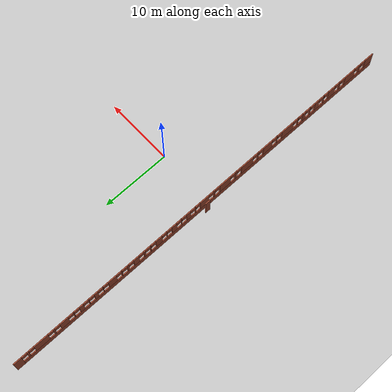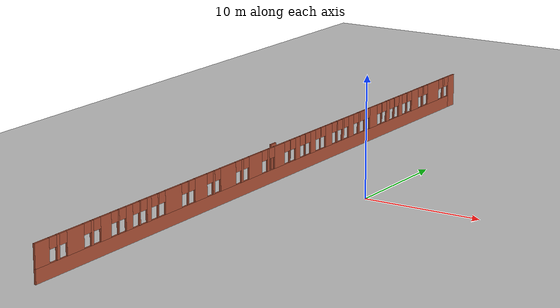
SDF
<sdf version="1.6">
 <world name="default">
  <model name="ground_plane">
   <static>1</static>
   <link name="link">
    <collision name="collision">
     <geometry><plane><normal>0 0 1</normal><size>100 100</size></plane></geometry>
     <surface><friction><ode><mu>100</mu><mu2>50</mu2></ode></friction></surface>
    </collision>
    <visual name="visual">
     <cast_shadows>0</cast_shadows>
     <geometry><plane><normal>0 0 1</normal><size>100 100</size></plane></geometry>
     <material>
      <script><uri>file://media/materials/scripts/gazebo.material</uri><name>Gazebo/Grey</name></script>
     </material>
    </visual>
   </link>
  </model>
  <model name="UNFRGS_INF_-_Predio_73">
   <pose>-0.02513 1.0401 -0.009 0 -0 0</pose>
   <link name="Wall_693">
    <collision name="Wall_693_Collision">
     <geometry><box><size>0.75 0.15 2.96</size></box></geometry>
     <pose>0 0 1.48 0 -0 0</pose>
    </collision>
    <visual name="Wall_693_Visual">
     <pose>0 0 1.48 0 -0 0</pose>
     <geometry><box><size>0.75 0.15 2.96</size></box></geometry>
     <material>
      <script><uri>file://media/materials/scripts/gazebo.material</uri><name>Gazebo/Bricks</name></script>
      <ambient>0.498039 0.498039 0.498039 1</ambient>
     </material>
     <meta><layer>0</layer></meta>
    </visual>
    <pose>-9.34913 -0.025219 0 0 0 -1.5708</pose>
   </link>
   <link name="Wall_7">
    <pose>-8.77313 -0.095219 0 0 0 -1.5708</pose>
    <visual name="Wall_7_Visual_0">
     <pose>-30.0271 0 1.48 0 -0 0</pose>
     <geometry><box><size>1.19571 0.15 2.96</size></box></geometry>
     <material>
      <script><uri>file://media/materials/scripts/gazebo.material</uri><name>Gazebo/Bricks</name></script>
      <ambient>0.929412 1 0.760784 1</ambient>
     </material>
     <meta><layer>0</layer></meta>
    </visual>
    <collision name="Wall_7_Collision_0">
     <geometry><box><size>1.19571 0.15 2.96</size></box></geometry>
     <pose>-30.0271 0 1.48 0 -0 0</pose>
    </collision>
    <visual name="Wall_7_Visual_1">
     <pose>0.597857 0 0.55 0 -0 0</pose>
     <geometry><box><size>60.0543 0.15 1.11</size></box></geometry>
     <material>
      <script><uri>file://media/materials/scripts/gazebo.material</uri><name>Gazebo/Bricks</name></script>
      <ambient>0.929412 1 0.760784 1</ambient>
     </material>
     <meta><layer>0</layer></meta>
    </visual>
    <collision name="Wall_7_Collision_1">
     <geometry><box><size>60.0543 0.15 1.11</size></box></geometry>
     <pose>0.597857 0 0.55 0 -0 0</pose>
    </collision>
    <visual name="Wall_7_Visual_2">
     <pose>-28.4868 0 2.03 0 -0 0</pose>
     <geometry><box><size>0.285054 0.15 1.86</size></box></geometry>
     <material>
      <script><uri>file://media/materials/scripts/gazebo.material</uri><name>Gazebo/Bricks</name></script>
      <ambient>0.929412 1 0.760784 1</ambient>
     </material>
     <meta><layer>0</layer></meta>
    </visual>
    <collision name="Wall_7_Collision_2">
     <geometry><box><size>0.285054 0.15 1.86</size></box></geometry>
     <pose>-28.4868 0 2.03 0 -0 0</pose>
    </collision>
    <visual name="Wall_7_Visual_3">
     <pose>-26.47 0 2.03 0 -0 0</pose>
     <geometry><box><size>2.14855 0.15 1.86</size></box></geometry>
     <material>
      <script><uri>file://media/materials/scripts/gazebo.material</uri><name>Gazebo/Bricks</name></script>
      <ambient>0.929412 1 0.760784 1</ambient>
     </material>
     <meta><layer>0</layer></meta>
    </visual>
    <collision name="Wall_7_Collision_3">
     <geometry><box><size>2.14855 0.15 1.86</size></box></geometry>
     <pose>-26.47 0 2.03 0 -0 0</pose>
    </collision>
    <visual name="Wall_7_Visual_4">
     <pose>-24.4929 0 2.03 0 -0 0</pose>
     <geometry><box><size>0.20548 0.15 1.86</size></box></geometry>
     <material>
      <script><uri>file://media/materials/scripts/gazebo.material</uri><name>Gazebo/Bricks</name></script>
      <ambient>0.929412 1 0.760784 1</ambient>
     </material>
     <meta><layer>0</layer></meta>
    </visual>
    <collision name="Wall_7_Collision_4">
     <geometry><box><size>0.20548 0.15 1.86</size></box></geometry>
     <pose>-24.4929 0 2.03 0 -0 0</pose>
    </collision>
    <visual name="Wall_7_Visual_5">
     <pose>-22.9523 0 2.03 0 -0 0</pose>
     <geometry><box><size>1.27583 0.15 1.86</size></box></geometry>
     <material>
      <script><uri>file://media/materials/scripts/gazebo.material</uri><name>Gazebo/Bricks</name></script>
      <ambient>0.929412 1 0.760784 1</ambient>
     </material>
     <meta><layer>0</layer></meta>
    </visual>
    <collision name="Wall_7_Collision_5">
     <geometry><box><size>1.27583 0.15 1.86</size></box></geometry>
     <pose>-22.9523 0 2.03 0 -0 0</pose>
    </collision>
    <visual name="Wall_7_Visual_6">
     <pose>-21.4441 0 2.03 0 -0 0</pose>
     <geometry><box><size>0.140611 0.15 1.86</size></box></geometry>
     <material>
      <script><uri>file://media/materials/scripts/gazebo.material</uri><name>Gazebo/Bricks</name></script>
      <ambient>0.929412 1 0.760784 1</ambient>
     </material>
     <meta><layer>0</layer></meta>
    </visual>
    <collision name="Wall_7_Collision_6">
     <geometry><box><size>0.140611 0.15 1.86</size></box></geometry>
     <pose>-21.4441 0 2.03 0 -0 0</pose>
    </collision>
    <visual name="Wall_7_Visual_7">
     <pose>-20.2602 0 2.03 0 -0 0</pose>
     <geometry><box><size>0.627134 0.15 1.86</size></box></geometry>
     <material>
      <script><uri>file://media/materials/scripts/gazebo.material</uri><name>Gazebo/Bricks</name></script>
      <ambient>0.929412 1 0.760784 1</ambient>
     </material>
     <meta><layer>0</layer></meta>
    </visual>
    <collision name="Wall_7_Collision_7">
     <geometry><box><size>0.627134 0.15 1.86</size></box></geometry>
     <pose>-20.2602 0 2.03 0 -0 0</pose>
    </collision>
    <visual name="Wall_7_Visual_8">
     <pose>-19.0925 0 2.03 0 -0 0</pose>
     <geometry><box><size>0.108176 0.15 1.86</size></box></geometry>
     <material>
      <script><uri>file://media/materials/scripts/gazebo.material</uri><name>Gazebo/Bricks</name></script>
      <ambient>0.929412 1 0.760784 1</ambient>
     </material>
     <meta><layer>0</layer></meta>
    </visual>
    <collision name="Wall_7_Collision_8">
     <geometry><box><size>0.108176 0.15 1.86</size></box></geometry>
     <pose>-19.0925 0 2.03 0 -0 0</pose>
    </collision>
    <visual name="Wall_7_Visual_9">
     <pose>-17.9565 0 2.03 0 -0 0</pose>
     <geometry><box><size>0.563907 0.15 1.86</size></box></geometry>
     <material>
      <script><uri>file://media/materials/scripts/gazebo.material</uri><name>Gazebo/Bricks</name></script>
      <ambient>0.929412 1 0.760784 1</ambient>
     </material>
     <meta><layer>0</layer></meta>
    </visual>
    <collision name="Wall_7_Collision_9">
     <geometry><box><size>0.563907 0.15 1.86</size></box></geometry>
     <pose>-17.9565 0 2.03 0 -0 0</pose>
    </collision>
    <visual name="Wall_7_Visual_10">
     <pose>-16.8375 0 2.03 0 -0 0</pose>
     <geometry><box><size>0.074071 0.15 1.86</size></box></geometry>
     <material>
      <script><uri>file://media/materials/scripts/gazebo.material</uri><name>Gazebo/Bricks</name></script>
      <ambient>0.929412 1 0.760784 1</ambient>
     </material>
     <meta><layer>0</layer></meta>
    </visual>
    <collision name="Wall_7_Collision_10">
     <geometry><box><size>0.074071 0.15 1.86</size></box></geometry>
     <pose>-16.8375 0 2.03 0 -0 0</pose>
    </collision>
    <visual name="Wall_7_Visual_11">
     <pose>-15.3606 0 2.03 0 -0 0</pose>
     <geometry><box><size>1.27969 0.15 1.86</size></box></geometry>
     <material>
      <script><uri>file://media/materials/scripts/gazebo.material</uri><name>Gazebo/Bricks</name></script>
      <ambient>0.929412 1 0.760784 1</ambient>
     </material>
     <meta><layer>0</layer></meta>
    </visual>
    <collision name="Wall_7_Collision_11">
     <geometry><box><size>1.27969 0.15 1.86</size></box></geometry>
     <pose>-15.3606 0 2.03 0 -0 0</pose>
    </collision>
    <visual name="Wall_7_Visual_12">
     <pose>-13.8536 0 2.03 0 -0 0</pose>
     <geometry><box><size>0.134351 0.15 1.86</size></box></geometry>
     <material>
      <script><uri>file://media/materials/scripts/gazebo.material</uri><name>Gazebo/Bricks</name></script>
      <ambient>0.929412 1 0.760784 1</ambient>
     </material>
     <meta><layer>0</layer></meta>
    </visual>
    <collision name="Wall_7_Collision_12">
     <geometry><box><size>0.134351 0.15 1.86</size></box></geometry>
     <pose>-13.8536 0 2.03 0 -0 0</pose>
    </collision>
    <visual name="Wall_7_Visual_13">
     <pose>-12.859 0 2.03 0 -0 0</pose>
     <geometry><box><size>0.254914 0.15 1.86</size></box></geometry>
     <material>
      <script><uri>file://media/materials/scripts/gazebo.material</uri><name>Gazebo/Bricks</name></script>
      <ambient>0.929412 1 0.760784 1</ambient>
     </material>
     <meta><layer>0</layer></meta>
    </visual>
    <collision name="Wall_7_Collision_13">
     <geometry><box><size>0.254914 0.15 1.86</size></box></geometry>
     <pose>-12.859 0 2.03 0 -0 0</pose>
    </collision>
    <visual name="Wall_7_Visual_14">
     <pose>-11.5027 0 2.03 0 -0 0</pose>
     <geometry><box><size>0.857721 0.15 1.86</size></box></geometry>
     <material>
      <script><uri>file://media/materials/scripts/gazebo.material</uri><name>Gazebo/Bricks</name></script>
      <ambient>0.929412 1 0.760784 1</ambient>
     </material>
     <meta><layer>0</layer></meta>
    </visual>
    <collision name="Wall_7_Collision_14">
     <geometry><box><size>0.857721 0.15 1.86</size></box></geometry>
     <pose>-11.5027 0 2.03 0 -0 0</pose>
    </collision>
    <visual name="Wall_7_Visual_15">
     <pose>-10.1463 0 2.03 0 -0 0</pose>
     <geometry><box><size>0.254914 0.15 1.86</size></box></geometry>
     <material>
      <script><uri>file://media/materials/scripts/gazebo.material</uri><name>Gazebo/Bricks</name></script>
      <ambient>0.929412 1 0.760784 1</ambient>
     </material>
     <meta><layer>0</layer></meta>
    </visual>
    <collision name="Wall_7_Collision_15">
     <geometry><box><size>0.254914 0.15 1.86</size></box></geometry>
     <pose>-10.1463 0 2.03 0 -0 0</pose>
    </collision>
    <visual name="Wall_7_Visual_16">
     <pose>-9.15171 0 2.03 0 -0 0</pose>
     <geometry><box><size>0.134351 0.15 1.86</size></box></geometry>
     <material>
      <script><uri>file://media/materials/scripts/gazebo.material</uri><name>Gazebo/Bricks</name></script>
      <ambient>0.929412 1 0.760784 1</ambient>
     </material>
     <meta><layer>0</layer></meta>
    </visual>
    <collision name="Wall_7_Collision_16">
     <geometry><box><size>0.134351 0.15 1.86</size></box></geometry>
     <pose>-9.15171 0 2.03 0 -0 0</pose>
    </collision>
    <visual name="Wall_7_Visual_17">
     <pose>-7.78032 0 2.03 0 -0 0</pose>
     <geometry><box><size>1.00842 0.15 1.86</size></box></geometry>
     <material>
      <script><uri>file://media/materials/scripts/gazebo.material</uri><name>Gazebo/Bricks</name></script>
      <ambient>0.929412 1 0.760784 1</ambient>
     </material>
     <meta><layer>0</layer></meta>
    </visual>
    <collision name="Wall_7_Collision_17">
     <geometry><box><size>1.00842 0.15 1.86</size></box></geometry>
     <pose>-7.78032 0 2.03 0 -0 0</pose>
    </collision>
    <visual name="Wall_7_Visual_18">
     <pose>-6.45414 0 2.03 0 -0 0</pose>
     <geometry><box><size>0.043931 0.15 1.86</size></box></geometry>
     <material>
      <script><uri>file://media/materials/scripts/gazebo.material</uri><name>Gazebo/Bricks</name></script>
      <ambient>0.929412 1 0.760784 1</ambient>
     </material>
     <meta><layer>0</layer></meta>
    </visual>
    <collision name="Wall_7_Collision_18">
     <geometry><box><size>0.043931 0.15 1.86</size></box></geometry>
     <pose>-6.45414 0 2.03 0 -0 0</pose>
    </collision>
    <visual name="Wall_7_Visual_19">
     <pose>-5.23346 0 2.03 0 -0 0</pose>
     <geometry><box><size>0.79744 0.15 1.86</size></box></geometry>
     <material>
      <script><uri>file://media/materials/scripts/gazebo.material</uri><name>Gazebo/Bricks</name></script>
      <ambient>0.929412 1 0.760784 1</ambient>
     </material>
     <meta><layer>0</layer></meta>
    </visual>
    <collision name="Wall_7_Collision_19">
     <geometry><box><size>0.79744 0.15 1.86</size></box></geometry>
     <pose>-5.23346 0 2.03 0 -0 0</pose>
    </collision>
    <visual name="Wall_7_Visual_20">
     <pose>-3.9977 0 2.03 0 -0 0</pose>
     <geometry><box><size>0.074071 0.15 1.86</size></box></geometry>
     <material>
      <script><uri>file://media/materials/scripts/gazebo.material</uri><name>Gazebo/Bricks</name></script>
      <ambient>0.929412 1 0.760784 1</ambient>
     </material>
     <meta><layer>0</layer></meta>
    </visual>
    <collision name="Wall_7_Collision_20">
     <geometry><box><size>0.074071 0.15 1.86</size></box></geometry>
     <pose>-3.9977 0 2.03 0 -0 0</pose>
    </collision>
    <visual name="Wall_7_Visual_21">
     <pose>-2.82223 0 2.03 0 -0 0</pose>
     <geometry><box><size>0.676878 0.15 1.86</size></box></geometry>
     <material>
      <script><uri>file://media/materials/scripts/gazebo.material</uri><name>Gazebo/Bricks</name></script>
      <ambient>0.929412 1 0.760784 1</ambient>
     </material>
     <meta><layer>0</layer></meta>
    </visual>
    <collision name="Wall_7_Collision_21">
     <geometry><box><size>0.676878 0.15 1.86</size></box></geometry>
     <pose>-2.82223 0 2.03 0 -0 0</pose>
    </collision>
    <visual name="Wall_7_Visual_22">
     <pose>-1.64675 0 2.03 0 -0 0</pose>
     <geometry><box><size>0.074071 0.15 1.86</size></box></geometry>
     <material>
      <script><uri>file://media/materials/scripts/gazebo.material</uri><name>Gazebo/Bricks</name></script>
      <ambient>0.929412 1 0.760784 1</ambient>
     </material>
     <meta><layer>0</layer></meta>
    </visual>
    <collision name="Wall_7_Collision_22">
     <geometry><box><size>0.074071 0.15 1.86</size></box></geometry>
     <pose>-1.64675 0 2.03 0 -0 0</pose>
    </collision>
    <visual name="Wall_7_Visual_23">
     <pose>-0.064384 0 2.03 0 -0 0</pose>
     <geometry><box><size>1.49067 0.15 1.86</size></box></geometry>
     <material>
      <script><uri>file://media/materials/scripts/gazebo.material</uri><name>Gazebo/Bricks</name></script>
      <ambient>0.929412 1 0.760784 1</ambient>
     </material>
     <meta><layer>0</layer></meta>
    </visual>
    <collision name="Wall_7_Collision_23">
     <geometry><box><size>1.49067 0.15 1.86</size></box></geometry>
     <pose>-0.064384 0 2.03 0 -0 0</pose>
    </collision>
    <visual name="Wall_7_Visual_24">
     <pose>1.60841 0 2.03 0 -0 0</pose>
     <geometry><box><size>0.254913 0.15 1.86</size></box></geometry>
     <material>
      <script><uri>file://media/materials/scripts/gazebo.material</uri><name>Gazebo/Bricks</name></script>
      <ambient>0.929412 1 0.760784 1</ambient>
     </material>
     <meta><layer>0</layer></meta>
    </visual>
    <collision name="Wall_7_Collision_24">
     <geometry><box><size>0.254913 0.15 1.86</size></box></geometry>
     <pose>1.60841 0 2.03 0 -0 0</pose>
    </collision>
    <visual name="Wall_7_Visual_25">
     <pose>3.47711 0 2.03 0 -0 0</pose>
     <geometry><box><size>1.88249 0.15 1.86</size></box></geometry>
     <material>
      <script><uri>file://media/materials/scripts/gazebo.material</uri><name>Gazebo/Bricks</name></script>
      <ambient>0.929412 1 0.760784 1</ambient>
     </material>
     <meta><layer>0</layer></meta>
    </visual>
    <collision name="Wall_7_Collision_25">
     <geometry><box><size>1.88249 0.15 1.86</size></box></geometry>
     <pose>3.47711 0 2.03 0 -0 0</pose>
    </collision>
    <visual name="Wall_7_Visual_26">
     <pose>5.36088 0 2.03 0 -0 0</pose>
     <geometry><box><size>0.285053 0.15 1.86</size></box></geometry>
     <material>
      <script><uri>file://media/materials/scripts/gazebo.material</uri><name>Gazebo/Bricks</name></script>
      <ambient>0.929412 1 0.760784 1</ambient>
     </material>
     <meta><layer>0</layer></meta>
    </visual>
    <collision name="Wall_7_Collision_26">
     <geometry><box><size>0.285053 0.15 1.86</size></box></geometry>
     <pose>5.36088 0 2.03 0 -0 0</pose>
    </collision>
    <visual name="Wall_7_Visual_27">
     <pose>7.35015 0 2.03 0 -0 0</pose>
     <geometry><box><size>2.09348 0.15 1.86</size></box></geometry>
     <material>
      <script><uri>file://media/materials/scripts/gazebo.material</uri><name>Gazebo/Bricks</name></script>
      <ambient>0.929412 1 0.760784 1</ambient>
     </material>
     <meta><layer>0</layer></meta>
    </visual>
    <collision name="Wall_7_Collision_27">
     <geometry><box><size>2.09348 0.15 1.86</size></box></geometry>
     <pose>7.35015 0 2.03 0 -0 0</pose>
    </collision>
    <visual name="Wall_7_Visual_28">
     <pose>9.30927 0 2.03 0 -0 0</pose>
     <geometry><box><size>0.224774 0.15 1.86</size></box></geometry>
     <material>
      <script><uri>file://media/materials/scripts/gazebo.material</uri><name>Gazebo/Bricks</name></script>
      <ambient>0.929412 1 0.760784 1</ambient>
     </material>
     <meta><layer>0</layer></meta>
    </visual>
    <collision name="Wall_7_Collision_28">
     <geometry><box><size>0.224774 0.15 1.86</size></box></geometry>
     <pose>9.30927 0 2.03 0 -0 0</pose>
    </collision>
    <visual name="Wall_7_Visual_29">
     <pose>11.0273 0 2.03 0 -0 0</pose>
     <geometry><box><size>1.61123 0.15 1.86</size></box></geometry>
     <material>
      <script><uri>file://media/materials/scripts/gazebo.material</uri><name>Gazebo/Bricks</name></script>
      <ambient>0.929412 1 0.760784 1</ambient>
     </material>
     <meta><layer>0</layer></meta>
    </visual>
    <collision name="Wall_7_Collision_29">
     <geometry><box><size>1.61123 0.15 1.86</size></box></geometry>
     <pose>11.0273 0 2.03 0 -0 0</pose>
    </collision>
    <visual name="Wall_7_Visual_30">
     <pose>12.7001 0 2.03 0 -0 0</pose>
     <geometry><box><size>0.134351 0.15 1.86</size></box></geometry>
     <material>
      <script><uri>file://media/materials/scripts/gazebo.material</uri><name>Gazebo/Bricks</name></script>
      <ambient>0.929412 1 0.760784 1</ambient>
     </material>
     <meta><layer>0</layer></meta>
    </visual>
    <collision name="Wall_7_Collision_30">
     <geometry><box><size>0.134351 0.15 1.86</size></box></geometry>
     <pose>12.7001 0 2.03 0 -0 0</pose>
    </collision>
    <visual name="Wall_7_Visual_31">
     <pose>14.614 0 2.03 0 -0 0</pose>
     <geometry><box><size>2.09348 0.15 1.86</size></box></geometry>
     <material>
      <script><uri>file://media/materials/scripts/gazebo.material</uri><name>Gazebo/Bricks</name></script>
      <ambient>0.929412 1 0.760784 1</ambient>
     </material>
     <meta><layer>0</layer></meta>
    </visual>
    <collision name="Wall_7_Collision_31">
     <geometry><box><size>2.09348 0.15 1.86</size></box></geometry>
     <pose>14.614 0 2.03 0 -0 0</pose>
    </collision>
    <visual name="Wall_7_Visual_32">
     <pose>16.5279 0 2.03 0 -0 0</pose>
     <geometry><box><size>0.134353 0.15 1.86</size></box></geometry>
     <material>
      <script><uri>file://media/materials/scripts/gazebo.material</uri><name>Gazebo/Bricks</name></script>
      <ambient>0.929412 1 0.760784 1</ambient>
     </material>
     <meta><layer>0</layer></meta>
    </visual>
    <collision name="Wall_7_Collision_32">
     <geometry><box><size>0.134353 0.15 1.86</size></box></geometry>
     <pose>16.5279 0 2.03 0 -0 0</pose>
    </collision>
    <visual name="Wall_7_Visual_33">
     <pose>17.6582 0 2.03 0 -0 0</pose>
     <geometry><box><size>0.526176 0.15 1.86</size></box></geometry>
     <material>
      <script><uri>file://media/materials/scripts/gazebo.material</uri><name>Gazebo/Bricks</name></script>
      <ambient>0.929412 1 0.760784 1</ambient>
     </material>
     <meta><layer>0</layer></meta>
    </visual>
    <collision name="Wall_7_Collision_33">
     <geometry><box><size>0.526176 0.15 1.86</size></box></geometry>
     <pose>17.6582 0 2.03 0 -0 0</pose>
    </collision>
    <visual name="Wall_7_Visual_34">
     <pose>18.7884 0 2.03 0 -0 0</pose>
     <geometry><box><size>0.134353 0.15 1.86</size></box></geometry>
     <material>
      <script><uri>file://media/materials/scripts/gazebo.material</uri><name>Gazebo/Bricks</name></script>
      <ambient>0.929412 1 0.760784 1</ambient>
     </material>
     <meta><layer>0</layer></meta>
    </visual>
    <collision name="Wall_7_Collision_34">
     <geometry><box><size>0.134353 0.15 1.86</size></box></geometry>
     <pose>18.7884 0 2.03 0 -0 0</pose>
    </collision>
    <visual name="Wall_7_Visual_35">
     <pose>20.0543 0 2.03 0 -0 0</pose>
     <geometry><box><size>0.797439 0.15 1.86</size></box></geometry>
     <material>
      <script><uri>file://media/materials/scripts/gazebo.material</uri><name>Gazebo/Bricks</name></script>
      <ambient>0.929412 1 0.760784 1</ambient>
     </material>
     <meta><layer>0</layer></meta>
    </visual>
    <collision name="Wall_7_Collision_35">
     <geometry><box><size>0.797439 0.15 1.86</size></box></geometry>
     <pose>20.0543 0 2.03 0 -0 0</pose>
    </collision>
    <visual name="Wall_7_Visual_36">
     <pose>21.3202 0 2.03 0 -0 0</pose>
     <geometry><box><size>0.134353 0.15 1.86</size></box></geometry>
     <material>
      <script><uri>file://media/materials/scripts/gazebo.material</uri><name>Gazebo/Bricks</name></script>
      <ambient>0.929412 1 0.760784 1</ambient>
     </material>
     <meta><layer>0</layer></meta>
    </visual>
    <collision name="Wall_7_Collision_36">
     <geometry><box><size>0.134353 0.15 1.86</size></box></geometry>
     <pose>21.3202 0 2.03 0 -0 0</pose>
    </collision>
    <visual name="Wall_7_Visual_37">
     <pose>22.7971 0 2.03 0 -0 0</pose>
     <geometry><box><size>1.2194 0.15 1.86</size></box></geometry>
     <material>
      <script><uri>file://media/materials/scripts/gazebo.material</uri><name>Gazebo/Bricks</name></script>
      <ambient>0.929412 1 0.760784 1</ambient>
     </material>
     <meta><layer>0</layer></meta>
    </visual>
    <collision name="Wall_7_Collision_37">
     <geometry><box><size>1.2194 0.15 1.86</size></box></geometry>
     <pose>22.7971 0 2.03 0 -0 0</pose>
    </collision>
    <visual name="Wall_7_Visual_38">
     <pose>24.3493 0 2.03 0 -0 0</pose>
     <geometry><box><size>0.285054 0.15 1.86</size></box></geometry>
     <material>
      <script><uri>file://media/materials/scripts/gazebo.material</uri><name>Gazebo/Bricks</name></script>
      <ambient>0.929412 1 0.760784 1</ambient>
     </material>
     <meta><layer>0</layer></meta>
    </visual>
    <collision name="Wall_7_Collision_38">
     <geometry><box><size>0.285054 0.15 1.86</size></box></geometry>
     <pose>24.3493 0 2.03 0 -0 0</pose>
    </collision>
    <visual name="Wall_7_Visual_39">
     <pose>26.2331 0 2.03 0 -0 0</pose>
     <geometry><box><size>1.88249 0.15 1.86</size></box></geometry>
     <material>
      <script><uri>file://media/materials/scripts/gazebo.material</uri><name>Gazebo/Bricks</name></script>
      <ambient>0.929412 1 0.760784 1</ambient>
     </material>
     <meta><layer>0</layer></meta>
    </visual>
    <collision name="Wall_7_Collision_39">
     <geometry><box><size>1.88249 0.15 1.86</size></box></geometry>
     <pose>26.2331 0 2.03 0 -0 0</pose>
    </collision>
    <visual name="Wall_7_Visual_40">
     <pose>28.1319 0 2.03 0 -0 0</pose>
     <geometry><box><size>0.315194 0.15 1.86</size></box></geometry>
     <material>
      <script><uri>file://media/materials/scripts/gazebo.material</uri><name>Gazebo/Bricks</name></script>
      <ambient>0.929412 1 0.760784 1</ambient>
     </material>
     <meta><layer>0</layer></meta>
    </visual>
    <collision name="Wall_7_Collision_40">
     <geometry><box><size>0.315194 0.15 1.86</size></box></geometry>
     <pose>28.1319 0 2.03 0 -0 0</pose>
    </collision>
    <visual name="Wall_7_Visual_41">
     <pose>29.8573 0 2.03 0 -0 0</pose>
     <geometry><box><size>1.53547 0.15 1.86</size></box></geometry>
     <material>
      <script><uri>file://media/materials/scripts/gazebo.material</uri><name>Gazebo/Bricks</name></script>
      <ambient>0.929412 1 0.760784 1</ambient>
     </material>
     <meta><layer>0</layer></meta>
    </visual>
    <collision name="Wall_7_Collision_41">
     <geometry><box><size>1.53547 0.15 1.86</size></box></geometry>
     <pose>29.8573 0 2.03 0 -0 0</pose>
    </collision>
    <visual name="Wall_7_Visual_42">
     <pose>-29.0293 0 2.53 0 -0 0</pose>
     <geometry><box><size>0.8 0.15 0.86</size></box></geometry>
     <material>
      <script><uri>file://media/materials/scripts/gazebo.material</uri><name>Gazebo/Bricks</name></script>
      <ambient>0.929412 1 0.760784 1</ambient>
     </material>
     <meta><layer>0</layer></meta>
    </visual>
    <collision name="Wall_7_Collision_42">
     <geometry><box><size>0.8 0.15 0.86</size></box></geometry>
     <pose>-29.0293 0 2.53 0 -0 0</pose>
    </collision>
    <visual name="Wall_7_Visual_43">
     <pose>-27.9442 0 2.53 0 -0 0</pose>
     <geometry><box><size>0.8 0.15 0.86</size></box></geometry>
     <material>
      <script><uri>file://media/materials/scripts/gazebo.material</uri><name>Gazebo/Bricks</name></script>
      <ambient>0.929412 1 0.760784 1</ambient>
     </material>
     <meta><layer>0</layer></meta>
    </visual>
    <collision name="Wall_7_Collision_43">
     <geometry><box><size>0.8 0.15 0.86</size></box></geometry>
     <pose>-27.9442 0 2.53 0 -0 0</pose>
    </collision>
    <visual name="Wall_7_Visual_44">
     <pose>-24.9957 0 2.53 0 -0 0</pose>
     <geometry><box><size>0.8 0.15 0.86</size></box></geometry>
     <material>
      <script><uri>file://media/materials/scripts/gazebo.material</uri><name>Gazebo/Bricks</name></script>
      <ambient>0.929412 1 0.760784 1</ambient>
     </material>
     <meta><layer>0</layer></meta>
    </visual>
    <collision name="Wall_7_Collision_44">
     <geometry><box><size>0.8 0.15 0.86</size></box></geometry>
     <pose>-24.9957 0 2.53 0 -0 0</pose>
    </collision>
    <visual name="Wall_7_Visual_45">
     <pose>-23.9902 0 2.53 0 -0 0</pose>
     <geometry><box><size>0.8 0.15 0.86</size></box></geometry>
     <material>
      <script><uri>file://media/materials/scripts/gazebo.material</uri><name>Gazebo/Bricks</name></script>
      <ambient>0.929412 1 0.760784 1</ambient>
     </material>
     <meta><layer>0</layer></meta>
    </visual>
    <collision name="Wall_7_Collision_45">
     <geometry><box><size>0.8 0.15 0.86</size></box></geometry>
     <pose>-23.9902 0 2.53 0 -0 0</pose>
    </collision>
    <visual name="Wall_7_Visual_46">
     <pose>-21.9144 0 2.53 0 -0 0</pose>
     <geometry><box><size>0.8 0.15 0.86</size></box></geometry>
     <material>
      <script><uri>file://media/materials/scripts/gazebo.material</uri><name>Gazebo/Bricks</name></script>
      <ambient>0.929412 1 0.760784 1</ambient>
     </material>
     <meta><layer>0</layer></meta>
    </visual>
    <collision name="Wall_7_Collision_46">
     <geometry><box><size>0.8 0.15 0.86</size></box></geometry>
     <pose>-21.9144 0 2.53 0 -0 0</pose>
    </collision>
    <visual name="Wall_7_Visual_47">
     <pose>-20.9738 0 2.53 0 -0 0</pose>
     <geometry><box><size>0.8 0.15 0.86</size></box></geometry>
     <material>
      <script><uri>file://media/materials/scripts/gazebo.material</uri><name>Gazebo/Bricks</name></script>
      <ambient>0.929412 1 0.760784 1</ambient>
     </material>
     <meta><layer>0</layer></meta>
    </visual>
    <collision name="Wall_7_Collision_47">
     <geometry><box><size>0.8 0.15 0.86</size></box></geometry>
     <pose>-20.9738 0 2.53 0 -0 0</pose>
    </collision>
    <visual name="Wall_7_Visual_48">
     <pose>-19.5466 0 2.53 0 -0 0</pose>
     <geometry><box><size>0.8 0.15 0.86</size></box></geometry>
     <material>
      <script><uri>file://media/materials/scripts/gazebo.material</uri><name>Gazebo/Bricks</name></script>
      <ambient>0.929412 1 0.760784 1</ambient>
     </material>
     <meta><layer>0</layer></meta>
    </visual>
    <collision name="Wall_7_Collision_48">
     <geometry><box><size>0.8 0.15 0.86</size></box></geometry>
     <pose>-19.5466 0 2.53 0 -0 0</pose>
    </collision>
    <visual name="Wall_7_Visual_49">
     <pose>-18.6384 0 2.53 0 -0 0</pose>
     <geometry><box><size>0.8 0.15 0.86</size></box></geometry>
     <material>
      <script><uri>file://media/materials/scripts/gazebo.material</uri><name>Gazebo/Bricks</name></script>
      <ambient>0.929412 1 0.760784 1</ambient>
     </material>
     <meta><layer>0</layer></meta>
    </visual>
    <collision name="Wall_7_Collision_49">
     <geometry><box><size>0.8 0.15 0.86</size></box></geometry>
     <pose>-18.6384 0 2.53 0 -0 0</pose>
    </collision>
    <visual name="Wall_7_Visual_50">
     <pose>-17.2745 0 2.53 0 -0 0</pose>
     <geometry><box><size>0.8 0.15 0.86</size></box></geometry>
     <material>
      <script><uri>file://media/materials/scripts/gazebo.material</uri><name>Gazebo/Bricks</name></script>
      <ambient>0.929412 1 0.760784 1</ambient>
     </material>
     <meta><layer>0</layer></meta>
    </visual>
    <collision name="Wall_7_Collision_50">
     <geometry><box><size>0.8 0.15 0.86</size></box></geometry>
     <pose>-17.2745 0 2.53 0 -0 0</pose>
    </collision>
    <visual name="Wall_7_Visual_51">
     <pose>-16.4005 0 2.53 0 -0 0</pose>
     <geometry><box><size>0.8 0.15 0.86</size></box></geometry>
     <material>
      <script><uri>file://media/materials/scripts/gazebo.material</uri><name>Gazebo/Bricks</name></script>
      <ambient>0.929412 1 0.760784 1</ambient>
     </material>
     <meta><layer>0</layer></meta>
    </visual>
    <collision name="Wall_7_Collision_51">
     <geometry><box><size>0.8 0.15 0.86</size></box></geometry>
     <pose>-16.4005 0 2.53 0 -0 0</pose>
    </collision>
    <visual name="Wall_7_Visual_52">
     <pose>-14.3208 0 2.53 0 -0 0</pose>
     <geometry><box><size>0.8 0.15 0.86</size></box></geometry>
     <material>
      <script><uri>file://media/materials/scripts/gazebo.material</uri><name>Gazebo/Bricks</name></script>
      <ambient>0.929412 1 0.760784 1</ambient>
     </material>
     <meta><layer>0</layer></meta>
    </visual>
    <collision name="Wall_7_Collision_52">
     <geometry><box><size>0.8 0.15 0.86</size></box></geometry>
     <pose>-14.3208 0 2.53 0 -0 0</pose>
    </collision>
    <visual name="Wall_7_Visual_53">
     <pose>-13.3864 0 2.53 0 -0 0</pose>
     <geometry><box><size>0.8 0.15 0.86</size></box></geometry>
     <material>
      <script><uri>file://media/materials/scripts/gazebo.material</uri><name>Gazebo/Bricks</name></script>
      <ambient>0.929412 1 0.760784 1</ambient>
     </material>
     <meta><layer>0</layer></meta>
    </visual>
    <collision name="Wall_7_Collision_53">
     <geometry><box><size>0.8 0.15 0.86</size></box></geometry>
     <pose>-13.3864 0 2.53 0 -0 0</pose>
    </collision>
    <visual name="Wall_7_Visual_54">
     <pose>-12.3315 0 2.53 0 -0 0</pose>
     <geometry><box><size>0.8 0.15 0.86</size></box></geometry>
     <material>
      <script><uri>file://media/materials/scripts/gazebo.material</uri><name>Gazebo/Bricks</name></script>
      <ambient>0.929412 1 0.760784 1</ambient>
     </material>
     <meta><layer>0</layer></meta>
    </visual>
    <collision name="Wall_7_Collision_54">
     <geometry><box><size>0.8 0.15 0.86</size></box></geometry>
     <pose>-12.3315 0 2.53 0 -0 0</pose>
    </collision>
    <visual name="Wall_7_Visual_55">
     <pose>-10.6738 0 2.53 0 -0 0</pose>
     <geometry><box><size>0.8 0.15 0.86</size></box></geometry>
     <material>
      <script><uri>file://media/materials/scripts/gazebo.material</uri><name>Gazebo/Bricks</name></script>
      <ambient>0.929412 1 0.760784 1</ambient>
     </material>
     <meta><layer>0</layer></meta>
    </visual>
    <collision name="Wall_7_Collision_55">
     <geometry><box><size>0.8 0.15 0.86</size></box></geometry>
     <pose>-10.6738 0 2.53 0 -0 0</pose>
    </collision>
    <visual name="Wall_7_Visual_56">
     <pose>-9.61888 0 2.53 0 -0 0</pose>
     <geometry><box><size>0.8 0.15 0.86</size></box></geometry>
     <material>
      <script><uri>file://media/materials/scripts/gazebo.material</uri><name>Gazebo/Bricks</name></script>
      <ambient>0.929412 1 0.760784 1</ambient>
     </material>
     <meta><layer>0</layer></meta>
    </visual>
    <collision name="Wall_7_Collision_56">
     <geometry><box><size>0.8 0.15 0.86</size></box></geometry>
     <pose>-9.61888 0 2.53 0 -0 0</pose>
    </collision>
    <visual name="Wall_7_Visual_57">
     <pose>-8.68453 0 2.53 0 -0 0</pose>
     <geometry><box><size>0.8 0.15 0.86</size></box></geometry>
     <material>
      <script><uri>file://media/materials/scripts/gazebo.material</uri><name>Gazebo/Bricks</name></script>
      <ambient>0.929412 1 0.760784 1</ambient>
     </material>
     <meta><layer>0</layer></meta>
    </visual>
    <collision name="Wall_7_Collision_57">
     <geometry><box><size>0.8 0.15 0.86</size></box></geometry>
     <pose>-8.68453 0 2.53 0 -0 0</pose>
    </collision>
    <visual name="Wall_7_Visual_58">
     <pose>-6.87611 0 2.53 0 -0 0</pose>
     <geometry><box><size>0.8 0.15 0.86</size></box></geometry>
     <material>
      <script><uri>file://media/materials/scripts/gazebo.material</uri><name>Gazebo/Bricks</name></script>
      <ambient>0.929412 1 0.760784 1</ambient>
     </material>
     <meta><layer>0</layer></meta>
    </visual>
    <collision name="Wall_7_Collision_58">
     <geometry><box><size>0.8 0.15 0.86</size></box></geometry>
     <pose>-6.87611 0 2.53 0 -0 0</pose>
    </collision>
    <visual name="Wall_7_Visual_59">
     <pose>-6.03218 0 2.53 0 -0 0</pose>
     <geometry><box><size>0.8 0.15 0.86</size></box></geometry>
     <material>
      <script><uri>file://media/materials/scripts/gazebo.material</uri><name>Gazebo/Bricks</name></script>
      <ambient>0.929412 1 0.760784 1</ambient>
     </material>
     <meta><layer>0</layer></meta>
    </visual>
    <collision name="Wall_7_Collision_59">
     <geometry><box><size>0.8 0.15 0.86</size></box></geometry>
     <pose>-6.03218 0 2.53 0 -0 0</pose>
    </collision>
    <visual name="Wall_7_Visual_60">
     <pose>-4.43474 0 2.53 0 -0 0</pose>
     <geometry><box><size>0.8 0.15 0.86</size></box></geometry>
     <material>
      <script><uri>file://media/materials/scripts/gazebo.material</uri><name>Gazebo/Bricks</name></script>
      <ambient>0.929412 1 0.760784 1</ambient>
     </material>
     <meta><layer>0</layer></meta>
    </visual>
    <collision name="Wall_7_Collision_60">
     <geometry><box><size>0.8 0.15 0.86</size></box></geometry>
     <pose>-4.43474 0 2.53 0 -0 0</pose>
    </collision>
    <visual name="Wall_7_Visual_61">
     <pose>-3.56067 0 2.53 0 -0 0</pose>
     <geometry><box><size>0.8 0.15 0.86</size></box></geometry>
     <material>
      <script><uri>file://media/materials/scripts/gazebo.material</uri><name>Gazebo/Bricks</name></script>
      <ambient>0.929412 1 0.760784 1</ambient>
     </material>
     <meta><layer>0</layer></meta>
    </visual>
    <collision name="Wall_7_Collision_61">
     <geometry><box><size>0.8 0.15 0.86</size></box></geometry>
     <pose>-3.56067 0 2.53 0 -0 0</pose>
    </collision>
    <visual name="Wall_7_Visual_62">
     <pose>-2.08379 0 2.53 0 -0 0</pose>
     <geometry><box><size>0.8 0.15 0.86</size></box></geometry>
     <material>
      <script><uri>file://media/materials/scripts/gazebo.material</uri><name>Gazebo/Bricks</name></script>
      <ambient>0.929412 1 0.760784 1</ambient>
     </material>
     <meta><layer>0</layer></meta>
    </visual>
    <collision name="Wall_7_Collision_62">
     <geometry><box><size>0.8 0.15 0.86</size></box></geometry>
     <pose>-2.08379 0 2.53 0 -0 0</pose>
    </collision>
    <visual name="Wall_7_Visual_63">
     <pose>-1.20972 0 2.53 0 -0 0</pose>
     <geometry><box><size>0.8 0.15 0.86</size></box></geometry>
     <material>
      <script><uri>file://media/materials/scripts/gazebo.material</uri><name>Gazebo/Bricks</name></script>
      <ambient>0.929412 1 0.760784 1</ambient>
     </material>
     <meta><layer>0</layer></meta>
    </visual>
    <collision name="Wall_7_Collision_63">
     <geometry><box><size>0.8 0.15 0.86</size></box></geometry>
     <pose>-1.20972 0 2.53 0 -0 0</pose>
    </collision>
    <visual name="Wall_7_Visual_64">
     <pose>1.08095 0 2.53 0 -0 0</pose>
     <geometry><box><size>0.8 0.15 0.86</size></box></geometry>
     <material>
      <script><uri>file://media/materials/scripts/gazebo.material</uri><name>Gazebo/Bricks</name></script>
      <ambient>0.929412 1 0.760784 1</ambient>
     </material>
     <meta><layer>0</layer></meta>
    </visual>
    <collision name="Wall_7_Collision_64">
     <geometry><box><size>0.8 0.15 0.86</size></box></geometry>
     <pose>1.08095 0 2.53 0 -0 0</pose>
    </collision>
    <visual name="Wall_7_Visual_65">
     <pose>2.13586 0 2.53 0 -0 0</pose>
     <geometry><box><size>0.8 0.15 0.86</size></box></geometry>
     <material>
      <script><uri>file://media/materials/scripts/gazebo.material</uri><name>Gazebo/Bricks</name></script>
      <ambient>0.929412 1 0.760784 1</ambient>
     </material>
     <meta><layer>0</layer></meta>
    </visual>
    <collision name="Wall_7_Collision_65">
     <geometry><box><size>0.8 0.15 0.86</size></box></geometry>
     <pose>2.13586 0 2.53 0 -0 0</pose>
    </collision>
    <visual name="Wall_7_Visual_66">
     <pose>4.81836 0 2.53 0 -0 0</pose>
     <geometry><box><size>0.8 0.15 0.86</size></box></geometry>
     <material>
      <script><uri>file://media/materials/scripts/gazebo.material</uri><name>Gazebo/Bricks</name></script>
      <ambient>0.929412 1 0.760784 1</ambient>
     </material>
     <meta><layer>0</layer></meta>
    </visual>
    <collision name="Wall_7_Collision_66">
     <geometry><box><size>0.8 0.15 0.86</size></box></geometry>
     <pose>4.81836 0 2.53 0 -0 0</pose>
    </collision>
    <visual name="Wall_7_Visual_67">
     <pose>5.90341 0 2.53 0 -0 0</pose>
     <geometry><box><size>0.8 0.15 0.86</size></box></geometry>
     <material>
      <script><uri>file://media/materials/scripts/gazebo.material</uri><name>Gazebo/Bricks</name></script>
      <ambient>0.929412 1 0.760784 1</ambient>
     </material>
     <meta><layer>0</layer></meta>
    </visual>
    <collision name="Wall_7_Collision_67">
     <geometry><box><size>0.8 0.15 0.86</size></box></geometry>
     <pose>5.90341 0 2.53 0 -0 0</pose>
    </collision>
    <visual name="Wall_7_Visual_68">
     <pose>8.79689 0 2.53 0 -0 0</pose>
     <geometry><box><size>0.8 0.15 0.86</size></box></geometry>
     <material>
      <script><uri>file://media/materials/scripts/gazebo.material</uri><name>Gazebo/Bricks</name></script>
      <ambient>0.929412 1 0.760784 1</ambient>
     </material>
     <meta><layer>0</layer></meta>
    </visual>
    <collision name="Wall_7_Collision_68">
     <geometry><box><size>0.8 0.15 0.86</size></box></geometry>
     <pose>8.79689 0 2.53 0 -0 0</pose>
    </collision>
    <visual name="Wall_7_Visual_69">
     <pose>9.82166 0 2.53 0 -0 0</pose>
     <geometry><box><size>0.8 0.15 0.86</size></box></geometry>
     <material>
      <script><uri>file://media/materials/scripts/gazebo.material</uri><name>Gazebo/Bricks</name></script>
      <ambient>0.929412 1 0.760784 1</ambient>
     </material>
     <meta><layer>0</layer></meta>
    </visual>
    <collision name="Wall_7_Collision_69">
     <geometry><box><size>0.8 0.15 0.86</size></box></geometry>
     <pose>9.82166 0 2.53 0 -0 0</pose>
    </collision>
    <visual name="Wall_7_Visual_70">
     <pose>12.2329 0 2.53 0 -0 0</pose>
     <geometry><box><size>0.8 0.15 0.86</size></box></geometry>
     <material>
      <script><uri>file://media/materials/scripts/gazebo.material</uri><name>Gazebo/Bricks</name></script>
      <ambient>0.929412 1 0.760784 1</ambient>
     </material>
     <meta><layer>0</layer></meta>
    </visual>
    <collision name="Wall_7_Collision_70">
     <geometry><box><size>0.8 0.15 0.86</size></box></geometry>
     <pose>12.2329 0 2.53 0 -0 0</pose>
    </collision>
    <visual name="Wall_7_Visual_71">
     <pose>13.1672 0 2.53 0 -0 0</pose>
     <geometry><box><size>0.8 0.15 0.86</size></box></geometry>
     <material>
      <script><uri>file://media/materials/scripts/gazebo.material</uri><name>Gazebo/Bricks</name></script>
      <ambient>0.929412 1 0.760784 1</ambient>
     </material>
     <meta><layer>0</layer></meta>
    </visual>
    <collision name="Wall_7_Collision_71">
     <geometry><box><size>0.8 0.15 0.86</size></box></geometry>
     <pose>13.1672 0 2.53 0 -0 0</pose>
    </collision>
    <visual name="Wall_7_Visual_72">
     <pose>16.0607 0 2.53 0 -0 0</pose>
     <geometry><box><size>0.8 0.15 0.86</size></box></geometry>
     <material>
      <script><uri>file://media/materials/scripts/gazebo.material</uri><name>Gazebo/Bricks</name></script>
      <ambient>0.929412 1 0.760784 1</ambient>
     </material>
     <meta><layer>0</layer></meta>
    </visual>
    <collision name="Wall_7_Collision_72">
     <geometry><box><size>0.8 0.15 0.86</size></box></geometry>
     <pose>16.0607 0 2.53 0 -0 0</pose>
    </collision>
    <visual name="Wall_7_Visual_73">
     <pose>16.9951 0 2.53 0 -0 0</pose>
     <geometry><box><size>0.8 0.15 0.86</size></box></geometry>
     <material>
      <script><uri>file://media/materials/scripts/gazebo.material</uri><name>Gazebo/Bricks</name></script>
      <ambient>0.929412 1 0.760784 1</ambient>
     </material>
     <meta><layer>0</layer></meta>
    </visual>
    <collision name="Wall_7_Collision_73">
     <geometry><box><size>0.8 0.15 0.86</size></box></geometry>
     <pose>16.9951 0 2.53 0 -0 0</pose>
    </collision>
    <visual name="Wall_7_Visual_74">
     <pose>18.3212 0 2.53 0 -0 0</pose>
     <geometry><box><size>0.8 0.15 0.86</size></box></geometry>
     <material>
      <script><uri>file://media/materials/scripts/gazebo.material</uri><name>Gazebo/Bricks</name></script>
      <ambient>0.929412 1 0.760784 1</ambient>
     </material>
     <meta><layer>0</layer></meta>
    </visual>
    <collision name="Wall_7_Collision_74">
     <geometry><box><size>0.8 0.15 0.86</size></box></geometry>
     <pose>18.3212 0 2.53 0 -0 0</pose>
    </collision>
    <visual name="Wall_7_Visual_75">
     <pose>19.2556 0 2.53 0 -0 0</pose>
     <geometry><box><size>0.8 0.15 0.86</size></box></geometry>
     <material>
      <script><uri>file://media/materials/scripts/gazebo.material</uri><name>Gazebo/Bricks</name></script>
      <ambient>0.929412 1 0.760784 1</ambient>
     </material>
     <meta><layer>0</layer></meta>
    </visual>
    <collision name="Wall_7_Collision_75">
     <geometry><box><size>0.8 0.15 0.86</size></box></geometry>
     <pose>19.2556 0 2.53 0 -0 0</pose>
    </collision>
    <visual name="Wall_7_Visual_76">
     <pose>20.853 0 2.53 0 -0 0</pose>
     <geometry><box><size>0.8 0.15 0.86</size></box></geometry>
     <material>
      <script><uri>file://media/materials/scripts/gazebo.material</uri><name>Gazebo/Bricks</name></script>
      <ambient>0.929412 1 0.760784 1</ambient>
     </material>
     <meta><layer>0</layer></meta>
    </visual>
    <collision name="Wall_7_Collision_76">
     <geometry><box><size>0.8 0.15 0.86</size></box></geometry>
     <pose>20.853 0 2.53 0 -0 0</pose>
    </collision>
    <visual name="Wall_7_Visual_77">
     <pose>21.7874 0 2.53 0 -0 0</pose>
     <geometry><box><size>0.8 0.15 0.86</size></box></geometry>
     <material>
      <script><uri>file://media/materials/scripts/gazebo.material</uri><name>Gazebo/Bricks</name></script>
      <ambient>0.929412 1 0.760784 1</ambient>
     </material>
     <meta><layer>0</layer></meta>
    </visual>
    <collision name="Wall_7_Collision_77">
     <geometry><box><size>0.8 0.15 0.86</size></box></geometry>
     <pose>21.7874 0 2.53 0 -0 0</pose>
    </collision>
    <visual name="Wall_7_Visual_78">
     <pose>23.8068 0 2.53 0 -0 0</pose>
     <geometry><box><size>0.8 0.15 0.86</size></box></geometry>
     <material>
      <script><uri>file://media/materials/scripts/gazebo.material</uri><name>Gazebo/Bricks</name></script>
      <ambient>0.929412 1 0.760784 1</ambient>
     </material>
     <meta><layer>0</layer></meta>
    </visual>
    <collision name="Wall_7_Collision_78">
     <geometry><box><size>0.8 0.15 0.86</size></box></geometry>
     <pose>23.8068 0 2.53 0 -0 0</pose>
    </collision>
    <visual name="Wall_7_Visual_79">
     <pose>24.8918 0 2.53 0 -0 0</pose>
     <geometry><box><size>0.8 0.15 0.86</size></box></geometry>
     <material>
      <script><uri>file://media/materials/scripts/gazebo.material</uri><name>Gazebo/Bricks</name></script>
      <ambient>0.929412 1 0.760784 1</ambient>
     </material>
     <meta><layer>0</layer></meta>
    </visual>
    <collision name="Wall_7_Collision_79">
     <geometry><box><size>0.8 0.15 0.86</size></box></geometry>
     <pose>24.8918 0 2.53 0 -0 0</pose>
    </collision>
    <visual name="Wall_7_Visual_80">
     <pose>27.5743 0 2.53 0 -0 0</pose>
     <geometry><box><size>0.8 0.15 0.86</size></box></geometry>
     <material>
      <script><uri>file://media/materials/scripts/gazebo.material</uri><name>Gazebo/Bricks</name></script>
      <ambient>0.929412 1 0.760784 1</ambient>
     </material>
     <meta><layer>0</layer></meta>
    </visual>
    <collision name="Wall_7_Collision_80">
     <geometry><box><size>0.8 0.15 0.86</size></box></geometry>
     <pose>27.5743 0 2.53 0 -0 0</pose>
    </collision>
    <visual name="Wall_7_Visual_81">
     <pose>28.6895 0 2.53 0 -0 0</pose>
     <geometry><box><size>0.8 0.15 0.86</size></box></geometry>
     <material>
      <script><uri>file://media/materials/scripts/gazebo.material</uri><name>Gazebo/Bricks</name></script>
      <ambient>0.929412 1 0.760784 1</ambient>
     </material>
     <meta><layer>0</layer></meta>
    </visual>
    <collision name="Wall_7_Collision_81">
     <geometry><box><size>0.8 0.15 0.86</size></box></geometry>
     <pose>28.6895 0 2.53 0 -0 0</pose>
    </collision>
   </link>
   <static>1</static>
  </model>
 </world>
</sdf>
